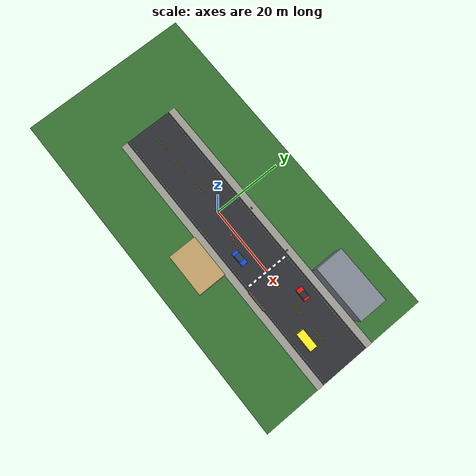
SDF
<?xml version="1.0" ?>
<sdf version="1.6">
  <world name="perception_test">
    <physics name="ode_physics" default="1" type="ode">
      <real_time_update_rate>1000</real_time_update_rate>
      <max_step_size>0.001</max_step_size>
      <real_time_factor>1.0</real_time_factor>
    </physics>

    <scene>
      <ambient>0.42 0.42 0.42 1</ambient>
      <background>0.72 0.82 0.92 1</background>
      <shadows>true</shadows>
      <fog>
        <type>linear</type>
        <color>0.72 0.78 0.82 1</color>
        <density>0.0</density>
        <start>35</start>
        <end>100</end>
      </fog>
    </scene>

    <light name="sun" type="directional">
      <cast_shadows>true</cast_shadows>
      <pose>0 0 30 0 0 0</pose>
      <diffuse>0.88 0.84 0.76 1</diffuse>
      <specular>0.20 0.20 0.20 1</specular>
      <direction>-0.45 0.25 -0.86</direction>
    </light>

    <!-- Base terrain and the drivable asphalt corridor. -->
    <model name="terrain">
      <static>true</static>
      <link name="link">
        <collision name="collision">
          <geometry><box><size>100 50 0.10</size></box></geometry>
        </collision>
        <visual name="visual">
          <geometry><box><size>100 50 0.10</size></box></geometry>
          <material><ambient>0.18 0.35 0.16 1</ambient><diffuse>0.20 0.42 0.18 1</diffuse></material>
        </visual>
      </link>
    </model>

    <model name="asphalt_road">
      <static>true</static>
      <pose>10 0 0.06 0 0 0</pose>
      <link name="link">
        <collision name="collision"><geometry><box><size>80 14 0.10</size></box></geometry></collision>
        <visual name="visual">
          <geometry><box><size>80 14 0.10</size></box></geometry>
          <material><ambient>0.10 0.11 0.12 1</ambient><diffuse>0.16 0.17 0.18 1</diffuse></material>
        </visual>
      </link>
    </model>

    <!-- Raised sidewalks provide strong curb returns in the lidar scan. -->
    <model name="sidewalks">
      <static>true</static>
      <link name="north"><pose>10 8 0.16 0 0 0</pose><collision name="c"><geometry><box><size>80 2 0.30</size></box></geometry></collision><visual name="v"><geometry><box><size>80 2 0.30</size></box></geometry><material><ambient>0.42 0.42 0.40 1</ambient><diffuse>0.58 0.58 0.55 1</diffuse></material></visual></link>
      <link name="south"><pose>10 -8 0.16 0 0 0</pose><collision name="c"><geometry><box><size>80 2 0.30</size></box></geometry></collision><visual name="v"><geometry><box><size>80 2 0.30</size></box></geometry><material><ambient>0.42 0.42 0.40 1</ambient><diffuse>0.58 0.58 0.55 1</diffuse></material></visual></link>
    </model>

    <!-- Visual-only lane markings: center dashes, edge lines, and crosswalk. -->
    <model name="road_markings">
      <static>true</static>
      <link name="markings">
        <visual name="north_edge"><pose>10 6.5 0.121 0 0 0</pose><geometry><box><size>80 0.12 0.012</size></box></geometry><material><ambient>0.9 0.9 0.9 1</ambient><diffuse>1 1 1 1</diffuse></material></visual>
        <visual name="south_edge"><pose>10 -6.5 0.121 0 0 0</pose><geometry><box><size>80 0.12 0.012</size></box></geometry><material><ambient>0.9 0.9 0.9 1</ambient><diffuse>1 1 1 1</diffuse></material></visual>
        <visual name="dash_0"><pose>-24 0 0.121 0 0 0</pose><geometry><box><size>4 0.16 0.012</size></box></geometry><material><ambient>0.95 0.72 0.05 1</ambient><diffuse>1 0.8 0.08 1</diffuse></material></visual>
        <visual name="dash_1"><pose>-16 0 0.121 0 0 0</pose><geometry><box><size>4 0.16 0.012</size></box></geometry><material><ambient>0.95 0.72 0.05 1</ambient><diffuse>1 0.8 0.08 1</diffuse></material></visual>
        <visual name="dash_2"><pose>-8 0 0.121 0 0 0</pose><geometry><box><size>4 0.16 0.012</size></box></geometry><material><ambient>0.95 0.72 0.05 1</ambient><diffuse>1 0.8 0.08 1</diffuse></material></visual>
        <visual name="dash_3"><pose>0 0 0.121 0 0 0</pose><geometry><box><size>4 0.16 0.012</size></box></geometry><material><ambient>0.95 0.72 0.05 1</ambient><diffuse>1 0.8 0.08 1</diffuse></material></visual>
        <visual name="dash_4"><pose>8 0 0.121 0 0 0</pose><geometry><box><size>4 0.16 0.012</size></box></geometry><material><ambient>0.95 0.72 0.05 1</ambient><diffuse>1 0.8 0.08 1</diffuse></material></visual>
        <visual name="dash_5"><pose>16 0 0.121 0 0 0</pose><geometry><box><size>4 0.16 0.012</size></box></geometry><material><ambient>0.95 0.72 0.05 1</ambient><diffuse>1 0.8 0.08 1</diffuse></material></visual>
        <visual name="dash_6"><pose>24 0 0.121 0 0 0</pose><geometry><box><size>4 0.16 0.012</size></box></geometry><material><ambient>0.95 0.72 0.05 1</ambient><diffuse>1 0.8 0.08 1</diffuse></material></visual>
        <visual name="dash_7"><pose>32 0 0.121 0 0 0</pose><geometry><box><size>4 0.16 0.012</size></box></geometry><material><ambient>0.95 0.72 0.05 1</ambient><diffuse>1 0.8 0.08 1</diffuse></material></visual>
        <visual name="dash_8"><pose>40 0 0.121 0 0 0</pose><geometry><box><size>4 0.16 0.012</size></box></geometry><material><ambient>0.95 0.72 0.05 1</ambient><diffuse>1 0.8 0.08 1</diffuse></material></visual>
        <visual name="crosswalk_0"><pose>20 -5.5 0.122 0 0 0</pose><geometry><box><size>0.55 1.0 0.014</size></box></geometry><material><diffuse>1 1 1 1</diffuse></material></visual>
        <visual name="crosswalk_1"><pose>20 -3.9 0.122 0 0 0</pose><geometry><box><size>0.55 1.0 0.014</size></box></geometry><material><diffuse>1 1 1 1</diffuse></material></visual>
        <visual name="crosswalk_2"><pose>20 -2.3 0.122 0 0 0</pose><geometry><box><size>0.55 1.0 0.014</size></box></geometry><material><diffuse>1 1 1 1</diffuse></material></visual>
        <visual name="crosswalk_3"><pose>20 -0.7 0.122 0 0 0</pose><geometry><box><size>0.55 1.0 0.014</size></box></geometry><material><diffuse>1 1 1 1</diffuse></material></visual>
        <visual name="crosswalk_4"><pose>20 0.9 0.122 0 0 0</pose><geometry><box><size>0.55 1.0 0.014</size></box></geometry><material><diffuse>1 1 1 1</diffuse></material></visual>
        <visual name="crosswalk_5"><pose>20 2.5 0.122 0 0 0</pose><geometry><box><size>0.55 1.0 0.014</size></box></geometry><material><diffuse>1 1 1 1</diffuse></material></visual>
        <visual name="crosswalk_6"><pose>20 4.1 0.122 0 0 0</pose><geometry><box><size>0.55 1.0 0.014</size></box></geometry><material><diffuse>1 1 1 1</diffuse></material></visual>
        <visual name="crosswalk_7"><pose>20 5.7 0.122 0 0 0</pose><geometry><box><size>0.55 1.0 0.014</size></box></geometry><material><diffuse>1 1 1 1</diffuse></material></visual>
      </link>
    </model>

    <!-- Three vehicle-like targets with distinct size, pose, and color. -->
    <model name="blue_sedan">
      <static>true</static><pose>13 -3.3 0.68 0 0 0.04</pose>
      <link name="body">
        <collision name="body_collision"><geometry><box><size>4.2 1.8 1.15</size></box></geometry></collision>
        <visual name="body_visual"><geometry><box><size>4.2 1.8 1.15</size></box></geometry><material><ambient>0.04 0.18 0.55 1</ambient><diffuse>0.05 0.28 0.85 1</diffuse></material></visual>
        <visual name="cabin"><pose>-0.15 0 0.78 0 0 0</pose><geometry><box><size>2.1 1.65 0.55</size></box></geometry><material><ambient>0.06 0.12 0.16 1</ambient><diffuse>0.12 0.24 0.30 1</diffuse></material></visual>
      </link>
    </model>
    <model name="red_hatchback">
      <static>true</static><pose>30 3.4 0.64 0 0 3.10</pose>
      <link name="body">
        <collision name="body_collision"><geometry><box><size>3.5 1.75 1.05</size></box></geometry></collision>
        <visual name="body_visual"><geometry><box><size>3.5 1.75 1.05</size></box></geometry><material><ambient>0.52 0.03 0.03 1</ambient><diffuse>0.86 0.06 0.04 1</diffuse></material></visual>
        <visual name="cabin"><pose>-0.25 0 0.72 0 0 0</pose><geometry><box><size>1.75 1.55 0.52</size></box></geometry><material><diffuse>0.10 0.18 0.20 1</diffuse></material></visual>
      </link>
    </model>
    <model name="delivery_van">
      <static>true</static><pose>39 -3.4 1.18 0 0 0</pose>
      <link name="body">
        <collision name="body_collision"><geometry><box><size>5.2 2.15 2.15</size></box></geometry></collision>
        <visual name="body_visual"><geometry><box><size>5.2 2.15 2.15</size></box></geometry><material><ambient>0.72 0.70 0.10 1</ambient><diffuse>0.95 0.90 0.12 1</diffuse></material></visual>
        <visual name="windshield"><pose>-2.611 0 0.42 0 0 0</pose><geometry><box><size>0.02 1.75 0.72</size></box></geometry><material><diffuse>0.06 0.14 0.18 1</diffuse></material></visual>
      </link>
    </model>

    <!-- Small targets exercise near-field detection and lidar sparsity. -->
    <model name="orange_cones">
      <static>true</static>
      <link name="cones">
        <collision name="c0"><pose>7 -1.2 0.40 0 0 0</pose><geometry><cylinder><radius>0.22</radius><length>0.70</length></cylinder></geometry></collision>
        <visual name="v0"><pose>7 -1.2 0.40 0 0 0</pose><geometry><cylinder><radius>0.22</radius><length>0.70</length></cylinder></geometry><material><ambient>0.85 0.22 0.01 1</ambient><diffuse>1 0.32 0.01 1</diffuse></material></visual>
        <collision name="c1"><pose>8.3 -1.5 0.40 0 0 0</pose><geometry><cylinder><radius>0.22</radius><length>0.70</length></cylinder></geometry></collision>
        <visual name="v1"><pose>8.3 -1.5 0.40 0 0 0</pose><geometry><cylinder><radius>0.22</radius><length>0.70</length></cylinder></geometry><material><ambient>0.85 0.22 0.01 1</ambient><diffuse>1 0.32 0.01 1</diffuse></material></visual>
        <collision name="c2"><pose>9.6 -1.8 0.40 0 0 0</pose><geometry><cylinder><radius>0.22</radius><length>0.70</length></cylinder></geometry></collision>
        <visual name="v2"><pose>9.6 -1.8 0.40 0 0 0</pose><geometry><cylinder><radius>0.22</radius><length>0.70</length></cylinder></geometry><material><ambient>0.85 0.22 0.01 1</ambient><diffuse>1 0.32 0.01 1</diffuse></material></visual>
      </link>
    </model>

    <!-- Sign and traffic light shapes create semantic camera targets and thin lidar returns. -->
    <model name="speed_limit_sign">
      <static>true</static><pose>5 7.15 0 0 0 0</pose>
      <link name="link">
        <collision name="pole_c"><pose>0 0 1.5 0 0 0</pose><geometry><cylinder><radius>0.06</radius><length>3.0</length></cylinder></geometry></collision>
        <visual name="pole_v"><pose>0 0 1.5 0 0 0</pose><geometry><cylinder><radius>0.06</radius><length>3.0</length></cylinder></geometry><material><diffuse>0.55 0.55 0.55 1</diffuse></material></visual>
        <collision name="sign_c"><pose>0 0 2.75 1.5708 0 0</pose><geometry><cylinder><radius>0.42</radius><length>0.06</length></cylinder></geometry></collision>
        <visual name="sign_v"><pose>0 0 2.75 1.5708 0 0</pose><geometry><cylinder><radius>0.42</radius><length>0.06</length></cylinder></geometry><material><ambient>0.85 0.05 0.04 1</ambient><diffuse>1 0.08 0.06 1</diffuse></material></visual>
        <visual name="sign_face"><pose>0 -0.036 2.75 1.5708 0 0</pose><geometry><cylinder><radius>0.32</radius><length>0.012</length></cylinder></geometry><material><diffuse>0.95 0.95 0.95 1</diffuse></material></visual>
      </link>
    </model>

    <model name="traffic_light">
      <static>true</static><pose>19 7.1 0 0 0 0</pose>
      <link name="link">
        <collision name="pole_c"><pose>0 0 1.7 0 0 0</pose><geometry><cylinder><radius>0.08</radius><length>3.4</length></cylinder></geometry></collision>
        <visual name="pole_v"><pose>0 0 1.7 0 0 0</pose><geometry><cylinder><radius>0.08</radius><length>3.4</length></cylinder></geometry><material><diffuse>0.20 0.20 0.20 1</diffuse></material></visual>
        <collision name="head_c"><pose>0 -0.10 3.55 0 0 0</pose><geometry><box><size>0.42 0.32 1.15</size></box></geometry></collision>
        <visual name="head_v"><pose>0 -0.10 3.55 0 0 0</pose><geometry><box><size>0.42 0.32 1.15</size></box></geometry><material><diffuse>0.05 0.05 0.05 1</diffuse></material></visual>
        <visual name="red"><pose>0 -0.275 3.88 1.5708 0 0</pose><geometry><cylinder><radius>0.13</radius><length>0.03</length></cylinder></geometry><material><emissive>1 0.02 0.02 1</emissive></material></visual>
        <visual name="amber"><pose>0 -0.275 3.55 1.5708 0 0</pose><geometry><cylinder><radius>0.13</radius><length>0.03</length></cylinder></geometry><material><diffuse>0.30 0.20 0.01 1</diffuse></material></visual>
        <visual name="green"><pose>0 -0.275 3.22 1.5708 0 0</pose><geometry><cylinder><radius>0.13</radius><length>0.03</length></cylinder></geometry><material><diffuse>0.01 0.25 0.03 1</diffuse></material></visual>
      </link>
    </model>

    <!-- Occlusion wall hides a small target until the ego vehicle approaches. -->
    <model name="occlusion_zone">
      <static>true</static>
      <link name="wall">
        <pose>24 -7.0 1.4 0 0 0</pose>
        <collision name="collision"><geometry><box><size>6.0 0.35 2.8</size></box></geometry></collision>
        <visual name="visual"><geometry><box><size>6.0 0.35 2.8</size></box></geometry><material><ambient>0.32 0.24 0.16 1</ambient><diffuse>0.48 0.36 0.22 1</diffuse></material></visual>
      </link>
      <link name="hidden_pedestrian">
        <pose>25.5 -6.2 0.95 0 0 0</pose>
        <collision name="body_c"><geometry><cylinder><radius>0.28</radius><length>1.55</length></cylinder></geometry></collision>
        <visual name="body_v"><geometry><cylinder><radius>0.28</radius><length>1.55</length></cylinder></geometry><material><ambient>0.10 0.55 0.42 1</ambient><diffuse>0.12 0.82 0.62 1</diffuse></material></visual>
        <collision name="head_c"><pose>0 0 1.0 0 0 0</pose><geometry><sphere><radius>0.22</radius></sphere></geometry></collision>
        <visual name="head_v"><pose>0 0 1.0 0 0 0</pose><geometry><sphere><radius>0.22</radius></sphere></geometry><material><diffuse>0.72 0.48 0.33 1</diffuse></material></visual>
      </link>
    </model>

    <!-- Buildings create long shadows and large planar lidar features. -->
    <model name="roadside_buildings">
      <static>true</static>
      <link name="warehouse"><pose>35 13 3.5 0 0 0</pose><collision name="c"><geometry><box><size>16 8 7</size></box></geometry></collision><visual name="v"><geometry><box><size>16 8 7</size></box></geometry><material><ambient>0.34 0.36 0.39 1</ambient><diffuse>0.48 0.51 0.55 1</diffuse></material></visual></link>
      <link name="shop"><pose>8 -13 2.5 0 0 0</pose><collision name="c"><geometry><box><size>12 8 5</size></box></geometry></collision><visual name="v"><geometry><box><size>12 8 5</size></box></geometry><material><ambient>0.58 0.48 0.31 1</ambient><diffuse>0.72 0.60 0.38 1</diffuse></material></visual></link>
    </model>

    <gui fullscreen="0">
      <camera name="overview">
        <pose>-14 -20 16 0 0.48 0.78</pose>
        <view_controller>orbit</view_controller>
      </camera>
    </gui>
  </world>
</sdf>
